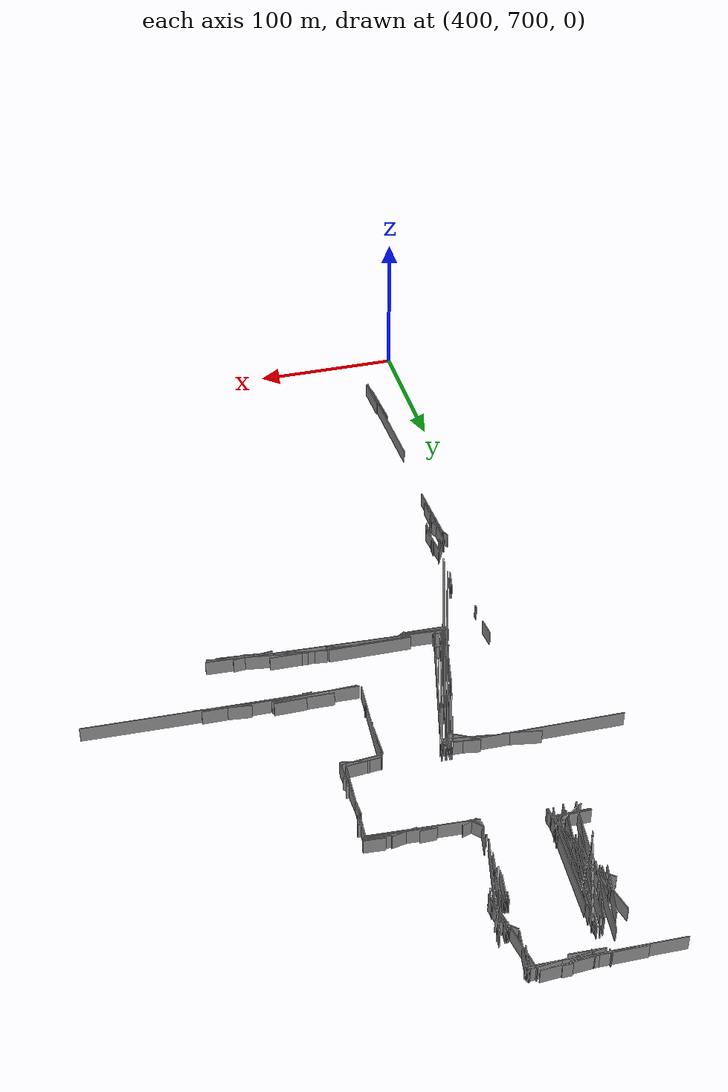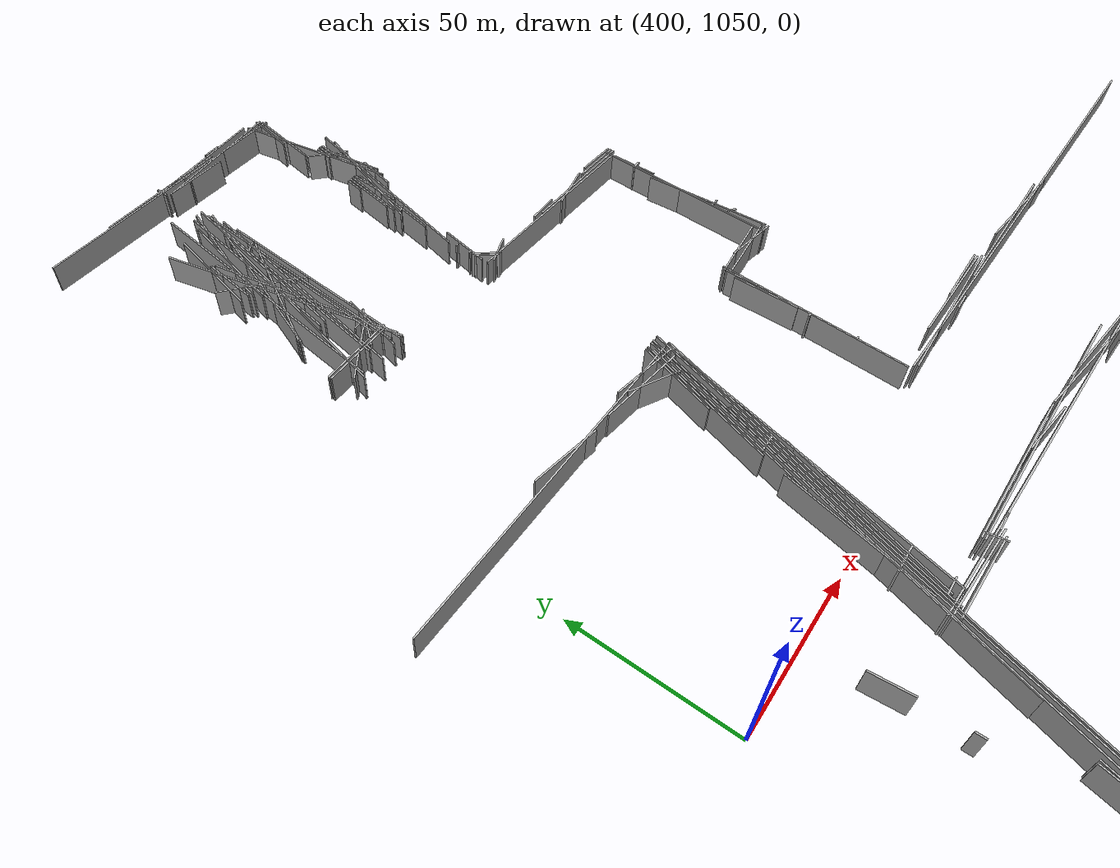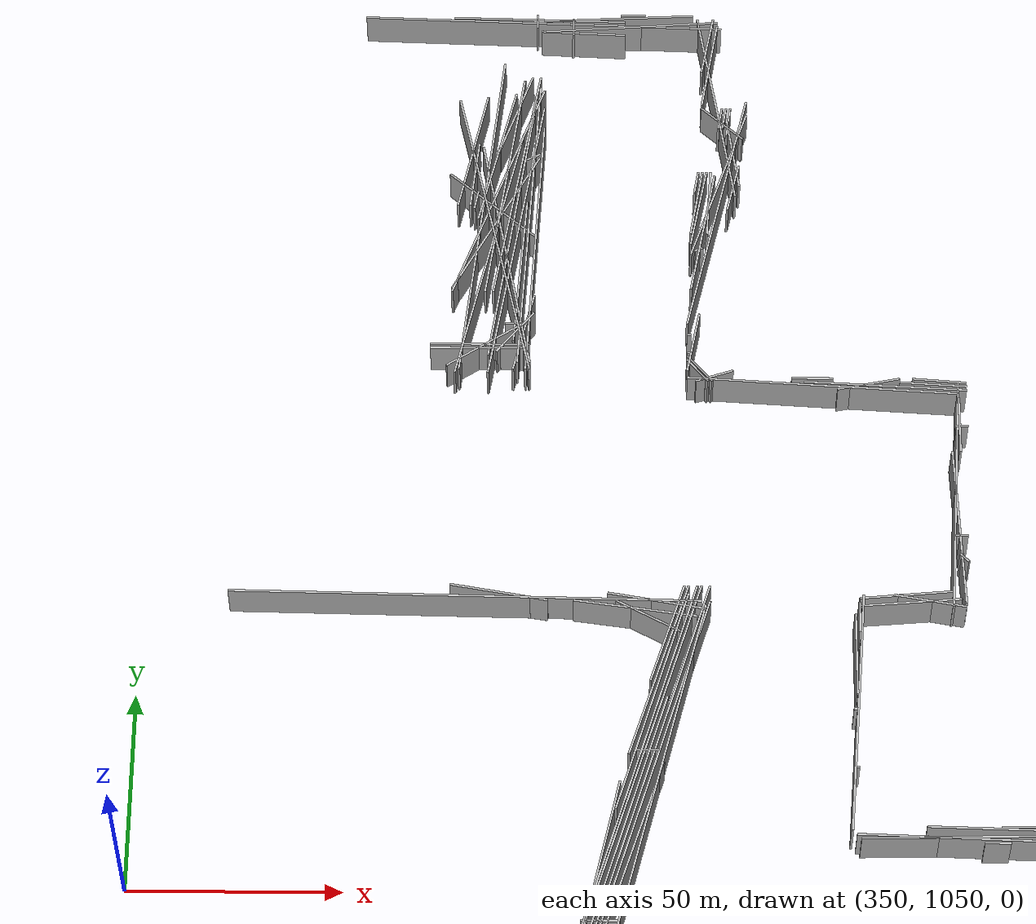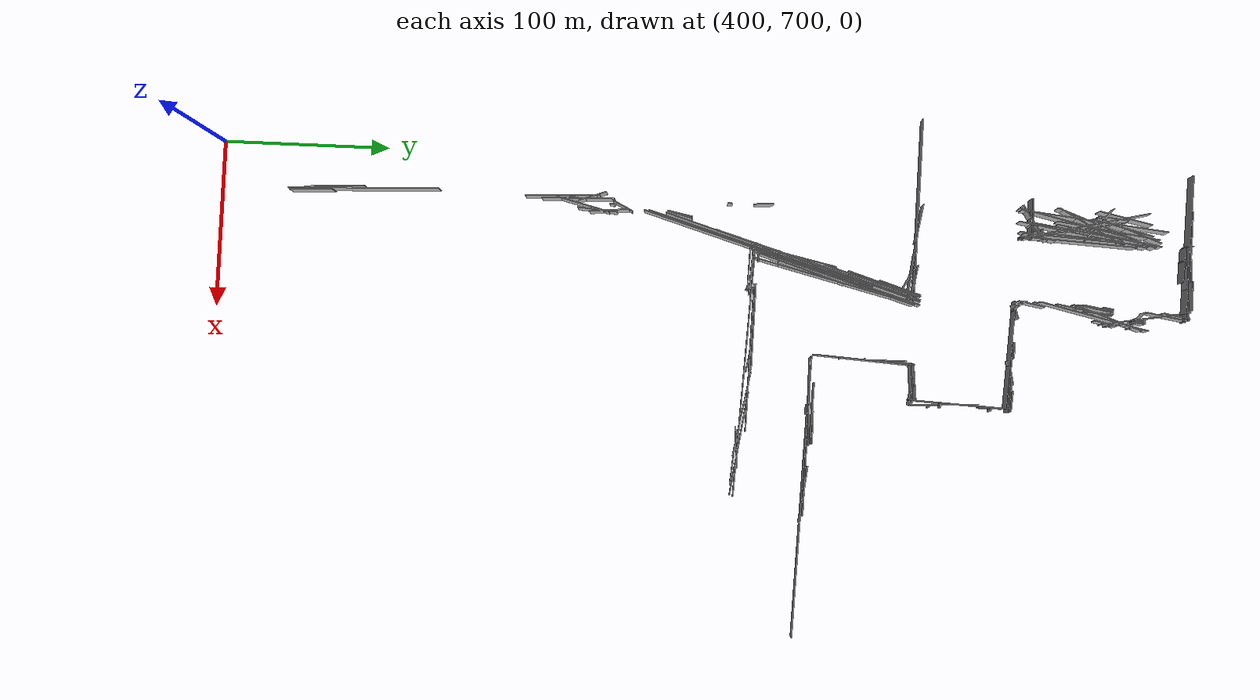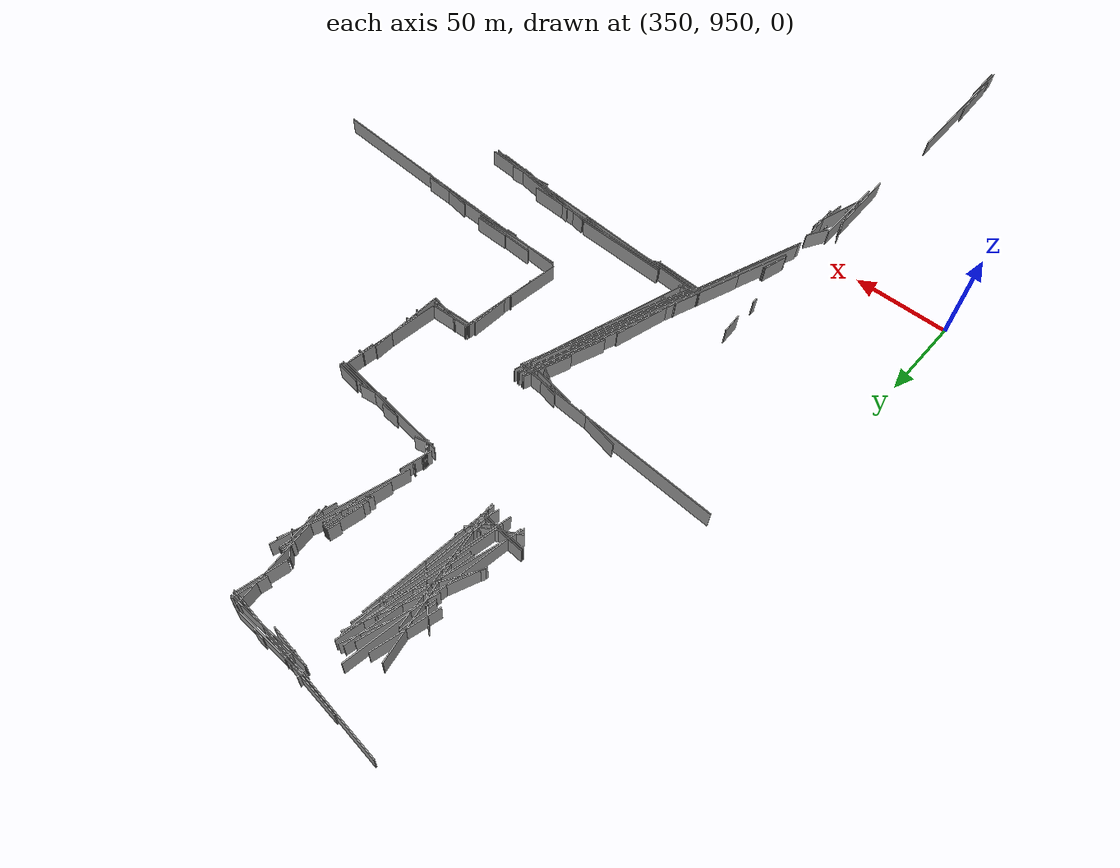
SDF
<sdf version="1.6">
 <model name="Worldsegments">
  <static>1</static>
  <link name="Wall_7">
   <pose>601.0 1058.0 5.0 0 0 -0.035699114</pose>
   <collision name="Wall_7_Collision"><geometry><box><size>168.1071 0.5 10.0</size></box></geometry></collision>
   <visual name="Wall_7_Visual"><geometry><box><size>168.1071 0.5 10.0</size></box></geometry></visual>
  </link>
  <link name="Wall_8">
   <pose>437.5 1221.5 5.0 0 0 1.4035424</pose>
   <collision name="Wall_8_Collision"><geometry><box><size>78.08969 0.5 10.0</size></box></geometry></collision>
   <visual name="Wall_8_Visual"><geometry><box><size>78.08969 0.5 10.0</size></box></geometry></visual>
  </link>
  <link name="Wall_11">
   <pose>487.0 1237.5 5.0 0 0 1.2417467</pose>
   <collision name="Wall_11_Collision"><geometry><box><size>43.32436 0.5 10.0</size></box></geometry></collision>
   <visual name="Wall_11_Visual"><geometry><box><size>43.32436 0.5 10.0</size></box></geometry></visual>
  </link>
  <link name="Wall_12">
   <pose>437.5 1237.5 5.0 0 0 1.3979357</pose>
   <collision name="Wall_12_Collision">
    <geometry><box><size>63.953106 0.5 10.0</size></box></geometry>
   </collision>
   <visual name="Wall_12_Visual"><geometry><box><size>63.953106 0.5 10.0</size></box></geometry></visual>
  </link>
  <link name="Wall_28">
   <pose>458.5 1041.0 5.0 0 0 1.2760662</pose>
   <collision name="Wall_28_Collision"><geometry><box><size>175.5705 0.5 10.0</size></box></geometry></collision>
   <visual name="Wall_28_Visual"><geometry><box><size>175.5705 0.5 10.0</size></box></geometry></visual>
  </link>
  <link name="Wall_44">
   <pose>490.5 1236.5 5.0 0 0 1.3439975</pose>
   <collision name="Wall_44_Collision">
    <geometry><box><size>13.341664 0.5 10.0</size></box></geometry>
   </collision>
   <visual name="Wall_44_Visual"><geometry><box><size>13.341664 0.5 10.0</size></box></geometry></visual>
  </link>
  <link name="Wall_50">
   <pose>458.0 1047.5 5.0 0 0 1.2704849</pose>
   <collision name="Wall_50_Collision">
    <geometry><box><size>162.26213 0.5 10.0</size></box></geometry>
   </collision>
   <visual name="Wall_50_Visual"><geometry><box><size>162.26213 0.5 10.0</size></box></geometry></visual>
  </link>
  <link name="Wall_53">
   <pose>551.5 1062.5 5.0 0 0 -0.027020449</pose>
   <collision name="Wall_53_Collision"><geometry><box><size>37.01351 0.5 10.0</size></box></geometry></collision>
   <visual name="Wall_53_Visual"><geometry><box><size>37.01351 0.5 10.0</size></box></geometry></visual>
  </link>
  <link name="Wall_60">
   <pose>429.0 1228.5 5.0 0 0 1.458906</pose>
   <collision name="Wall_60_Collision">
    <geometry><box><size>89.560036 0.5 10.0</size></box></geometry>
   </collision>
   <visual name="Wall_60_Visual"><geometry><box><size>89.560036 0.5 10.0</size></box></geometry></visual>
  </link>
  <link name="Wall_64">
   <pose>458.5 1039.0 5.0 0 0 0.0</pose>
   <collision name="Wall_64_Collision"><geometry><box><size>9.0 0.5 10.0</size></box></geometry></collision>
   <visual name="Wall_64_Visual"><geometry><box><size>9.0 0.5 10.0</size></box></geometry></visual>
  </link>
  <link name="Wall_65">
   <pose>469.0 1072.0 5.0 0 0 1.2737321</pose>
   <collision name="Wall_65_Collision">
    <geometry><box><size>102.48902 0.5 10.0</size></box></geometry>
   </collision>
   <visual name="Wall_65_Visual"><geometry><box><size>102.48902 0.5 10.0</size></box></geometry></visual>
  </link>
  <link name="Wall_69">
   <pose>434.5 1237.0 5.0 0 0 1.426642</pose>
   <collision name="Wall_69_Collision">
    <geometry><box><size>62.649822 0.5 10.0</size></box></geometry>
   </collision>
   <visual name="Wall_69_Visual"><geometry><box><size>62.649822 0.5 10.0</size></box></geometry></visual>
  </link>
  <link name="Wall_71">
   <pose>526.5 1021.0 5.0 0 0 -0.052240007</pose>
   <collision name="Wall_71_Collision">
    <geometry><box><size>153.20901 0.5 10.0</size></box></geometry>
   </collision>
   <visual name="Wall_71_Visual"><geometry><box><size>153.20901 0.5 10.0</size></box></geometry></visual>
  </link>
  <link name="Wall_74">
   <pose>426.5 787.5 5.0 0 0 -1.5378412</pose>
   <collision name="Wall_74_Collision"><geometry><box><size>91.04944 0.5 10.0</size></box></geometry></collision>
   <visual name="Wall_74_Visual"><geometry><box><size>91.04944 0.5 10.0</size></box></geometry></visual>
  </link>
  <link name="Wall_75">
   <pose>439.5 1194.5 5.0 0 0 1.3370532</pose>
   <collision name="Wall_75_Collision">
    <geometry><box><size>21.587032 0.5 10.0</size></box></geometry>
   </collision>
   <visual name="Wall_75_Visual"><geometry><box><size>21.587032 0.5 10.0</size></box></geometry></visual>
  </link>
  <link name="Wall_87">
   <pose>509.0 1182.0 5.0 0 0 0.0</pose>
   <collision name="Wall_87_Collision"><geometry><box><size>10.0 0.5 10.0</size></box></geometry></collision>
   <visual name="Wall_87_Visual"><geometry><box><size>10.0 0.5 10.0</size></box></geometry></visual>
  </link>
  <link name="Wall_105">
   <pose>432.5 1245.5 5.0 0 0 1.332187</pose>
   <collision name="Wall_105_Collision">
    <geometry><box><size>38.078865 0.5 10.0</size></box></geometry>
   </collision>
   <visual name="Wall_105_Visual"><geometry><box><size>38.078865 0.5 10.0</size></box></geometry></visual>
  </link>
  <link name="Wall_118">
   <pose>464.5 1052.5 5.0 0 0 1.2604089</pose>
   <collision name="Wall_118_Collision">
    <geometry><box><size>55.65968 0.5 10.0</size></box></geometry>
   </collision>
   <visual name="Wall_118_Visual"><geometry><box><size>55.65968 0.5 10.0</size></box></geometry></visual>
  </link>
  <link name="Wall_121">
   <pose>427.5 917.0 5.0 0 0 -1.5480729</pose>
   <collision name="Wall_121_Collision">
    <geometry><box><size>44.011364 0.5 10.0</size></box></geometry>
   </collision>
   <visual name="Wall_121_Visual"><geometry><box><size>44.011364 0.5 10.0</size></box></geometry></visual>
  </link>
  <link name="Wall_123">
   <pose>453.5 1028.0 5.0 0 0 1.2779909</pose>
   <collision name="Wall_123_Collision">
    <geometry><box><size>142.04576 0.5 10.0</size></box></geometry>
   </collision>
   <visual name="Wall_123_Visual"><geometry><box><size>142.04576 0.5 10.0</size></box></geometry></visual>
  </link>
  <link name="Wall_124">
   <pose>544.5 1169.0 5.0 0 0 0.0</pose>
   <collision name="Wall_124_Collision"><geometry><box><size>3.0 0.5 10.0</size></box></geometry></collision>
   <visual name="Wall_124_Visual"><geometry><box><size>3.0 0.5 10.0</size></box></geometry></visual>
  </link>
  <link name="Wall_152">
   <pose>443.5 1285.5 5.0 0 0 -0.03369511</pose>
   <collision name="Wall_152_Collision">
    <geometry><box><size>89.050545 0.5 10.0</size></box></geometry>
   </collision>
   <visual name="Wall_152_Visual"><geometry><box><size>89.050545 0.5 10.0</size></box></geometry></visual>
  </link>
  <link name="Wall_157">
   <pose>519.5 1024.0 5.0 0 0 -0.02246813</pose>
   <collision name="Wall_157_Collision">
    <geometry><box><size>89.02247 0.5 10.0</size></box></geometry>
   </collision>
   <visual name="Wall_157_Visual"><geometry><box><size>89.02247 0.5 10.0</size></box></geometry></visual>
  </link>
  <link name="Wall_160">
   <pose>489.5 1256.0 5.0 0 0 1.4464413</pose>
   <collision name="Wall_160_Collision">
    <geometry><box><size>8.062258 0.5 10.0</size></box></geometry>
   </collision>
   <visual name="Wall_160_Visual"><geometry><box><size>8.062258 0.5 10.0</size></box></geometry></visual>
  </link>
  <link name="Wall_163">
   <pose>511.5 1180.0 5.0 0 0 -0.061460957</pose>
   <collision name="Wall_163_Collision">
    <geometry><box><size>65.12296 0.5 10.0</size></box></geometry>
   </collision>
   <visual name="Wall_163_Visual"><geometry><box><size>65.12296 0.5 10.0</size></box></geometry></visual>
  </link>
  <link name="Wall_165">
   <pose>431.0 1191.5 5.0 0 0 0.57637525</pose>
   <collision name="Wall_165_Collision">
    <geometry><box><size>23.853722 0.5 10.0</size></box></geometry>
   </collision>
   <visual name="Wall_165_Visual"><geometry><box><size>23.853722 0.5 10.0</size></box></geometry></visual>
  </link>
  <link name="Wall_183">
   <pose>465.5 1023.0 5.0 0 0 -0.06442684</pose>
   <collision name="Wall_183_Collision">
    <geometry><box><size>31.06445 0.5 10.0</size></box></geometry>
   </collision>
   <visual name="Wall_183_Visual"><geometry><box><size>31.06445 0.5 10.0</size></box></geometry></visual>
  </link>
  <link name="Wall_184">
   <pose>426.0 770.0 5.0 0 0 -1.5152978</pose>
   <collision name="Wall_184_Collision">
    <geometry><box><size>36.05551 0.5 10.0</size></box></geometry>
   </collision>
   <visual name="Wall_184_Visual"><geometry><box><size>36.05551 0.5 10.0</size></box></geometry></visual>
  </link>
  <link name="Wall_187">
   <pose>517.5 1078.0 5.0 0 0 0.0</pose>
   <collision name="Wall_187_Collision"><geometry><box><size>1.0 0.5 10.0</size></box></geometry></collision>
   <visual name="Wall_187_Visual"><geometry><box><size>1.0 0.5 10.0</size></box></geometry></visual>
  </link>
  <link name="Wall_189">
   <pose>442.0 1286.0 5.0 0 0 1.5707964</pose>
   <collision name="Wall_189_Collision"><geometry><box><size>4.0 0.5 10.0</size></box></geometry></collision>
   <visual name="Wall_189_Visual"><geometry><box><size>4.0 0.5 10.0</size></box></geometry></visual>
  </link>
  <link name="Wall_192">
   <pose>481.5 1238.0 5.0 0 0 1.4056476</pose>
   <collision name="Wall_192_Collision">
    <geometry><box><size>6.0827627 0.5 10.0</size></box></geometry>
   </collision>
   <visual name="Wall_192_Visual"><geometry><box><size>6.0827627 0.5 10.0</size></box></geometry></visual>
  </link>
  <link name="Wall_194">
   <pose>469.0 1082.0 5.0 0 0 0.0</pose>
   <collision name="Wall_194_Collision"><geometry><box><size>6.0 0.5 10.0</size></box></geometry></collision>
   <visual name="Wall_194_Visual"><geometry><box><size>6.0 0.5 10.0</size></box></geometry></visual>
  </link>
  <link name="Wall_200">
   <pose>432.5 1226.0 5.0 0 0 1.0659349</pose>
   <collision name="Wall_200_Collision">
    <geometry><box><size>43.416588 0.5 10.0</size></box></geometry>
   </collision>
   <visual name="Wall_200_Visual"><geometry><box><size>43.416588 0.5 10.0</size></box></geometry></visual>
  </link>
  <link name="Wall_201">
   <pose>483.0 1223.5 5.0 0 0 1.3909428</pose>
   <collision name="Wall_201_Collision">
    <geometry><box><size>33.54102 0.5 10.0</size></box></geometry>
   </collision>
   <visual name="Wall_201_Visual"><geometry><box><size>33.54102 0.5 10.0</size></box></geometry></visual>
  </link>
  <link name="Wall_206">
   <pose>442.5 1286.5 5.0 0 0 -0.023251623</pose>
   <collision name="Wall_206_Collision">
    <geometry><box><size>43.011627 0.5 10.0</size></box></geometry>
   </collision>
   <visual name="Wall_206_Visual"><geometry><box><size>43.011627 0.5 10.0</size></box></geometry></visual>
  </link>
  <link name="Wall_208">
   <pose>440.5 1226.0 5.0 0 0 1.5083776</pose>
   <collision name="Wall_208_Collision"><geometry><box><size>80.1561 0.5 10.0</size></box></geometry></collision>
   <visual name="Wall_208_Visual"><geometry><box><size>80.1561 0.5 10.0</size></box></geometry></visual>
  </link>
  <link name="Wall_213">
   <pose>486.5 1229.5 5.0 0 0 1.3439975</pose>
   <collision name="Wall_213_Collision">
    <geometry><box><size>66.70832 0.5 10.0</size></box></geometry>
   </collision>
   <visual name="Wall_213_Visual"><geometry><box><size>66.70832 0.5 10.0</size></box></geometry></visual>
  </link>
  <link name="Wall_223">
   <pose>472.0 1103.0 5.0 0 0 1.2627436</pose>
   <collision name="Wall_223_Collision">
    <geometry><box><size>46.173584 0.5 10.0</size></box></geometry>
   </collision>
   <visual name="Wall_223_Visual"><geometry><box><size>46.173584 0.5 10.0</size></box></geometry></visual>
  </link>
  <link name="Wall_226">
   <pose>434.5 979.0 5.0 0 0 1.359703</pose>
   <collision name="Wall_226_Collision">
    <geometry><box><size>14.3178215 0.5 10.0</size></box></geometry>
   </collision>
   <visual name="Wall_226_Visual"><geometry><box><size>14.3178215 0.5 10.0</size></box></geometry></visual>
  </link>
  <link name="Wall_229">
   <pose>431.5 1231.0 5.0 0 0 -0.7086263</pose>
   <collision name="Wall_229_Collision">
    <geometry><box><size>27.658634 0.5 10.0</size></box></geometry>
   </collision>
   <visual name="Wall_229_Visual"><geometry><box><size>27.658634 0.5 10.0</size></box></geometry></visual>
  </link>
  <link name="Wall_232">
   <pose>517.5 1093.0 5.0 0 0 0.0</pose>
   <collision name="Wall_232_Collision"><geometry><box><size>1.0 0.5 10.0</size></box></geometry></collision>
   <visual name="Wall_232_Visual"><geometry><box><size>1.0 0.5 10.0</size></box></geometry></visual>
  </link>
  <link name="Wall_234">
   <pose>488.5 1257.0 5.0 0 0 1.4056476</pose>
   <collision name="Wall_234_Collision">
    <geometry><box><size>6.0827627 0.5 10.0</size></box></geometry>
   </collision>
   <visual name="Wall_234_Visual"><geometry><box><size>6.0827627 0.5 10.0</size></box></geometry></visual>
  </link>
  <link name="Wall_243">
   <pose>543.5 1139.0 5.0 0 0 0.0</pose>
   <collision name="Wall_243_Collision"><geometry><box><size>3.0 0.5 10.0</size></box></geometry></collision>
   <visual name="Wall_243_Visual"><geometry><box><size>3.0 0.5 10.0</size></box></geometry></visual>
  </link>
  <link name="Wall_244">
   <pose>438.5 1212.0 5.0 0 0 1.4959365</pose>
   <collision name="Wall_244_Collision">
    <geometry><box><size>40.112343 0.5 10.0</size></box></geometry>
   </collision>
   <visual name="Wall_244_Visual"><geometry><box><size>40.112343 0.5 10.0</size></box></geometry></visual>
  </link>
  <link name="Wall_247">
   <pose>518.0 1092.5 5.0 0 0 1.5053163</pose>
   <collision name="Wall_247_Collision">
    <geometry><box><size>61.13101 0.5 10.0</size></box></geometry>
   </collision>
   <visual name="Wall_247_Visual"><geometry><box><size>61.13101 0.5 10.0</size></box></geometry></visual>
  </link>
  <link name="Wall_251">
   <pose>428.5 756.0 5.0 0 0 -1.5323538</pose>
   <collision name="Wall_251_Collision">
    <geometry><box><size>26.019224 0.5 10.0</size></box></geometry>
   </collision>
   <visual name="Wall_251_Visual"><geometry><box><size>26.019224 0.5 10.0</size></box></geometry></visual>
  </link>
  <link name="Wall_257">
   <pose>430.0 937.5 5.0 0 0 -1.5707964</pose>
   <collision name="Wall_257_Collision"><geometry><box><size>3.0 0.5 10.0</size></box></geometry></collision>
   <visual name="Wall_257_Visual"><geometry><box><size>3.0 0.5 10.0</size></box></geometry></visual>
  </link>
  <link name="Wall_271">
   <pose>431.0 1217.5 5.0 0 0 1.3429393</pose>
   <collision name="Wall_271_Collision">
    <geometry><box><size>70.83079 0.5 10.0</size></box></geometry>
   </collision>
   <visual name="Wall_271_Visual"><geometry><box><size>70.83079 0.5 10.0</size></box></geometry></visual>
  </link>
  <link name="Wall_273">
   <pose>426.5 1122.0 5.0 0 0 -0.018016068</pose>
   <collision name="Wall_273_Collision">
    <geometry><box><size>111.01801 0.5 10.0</size></box></geometry>
   </collision>
   <visual name="Wall_273_Visual"><geometry><box><size>111.01801 0.5 10.0</size></box></geometry></visual>
  </link>
  <link name="Wall_274">
   <pose>479.5 1189.0 5.0 0 0 0.0</pose>
   <collision name="Wall_274_Collision"><geometry><box><size>1.0 0.5 10.0</size></box></geometry></collision>
   <visual name="Wall_274_Visual"><geometry><box><size>1.0 0.5 10.0</size></box></geometry></visual>
  </link>
  <link name="Wall_278">
   <pose>542.5 1150.5 5.0 0 0 1.5216556</pose>
   <collision name="Wall_278_Collision">
    <geometry><box><size>61.073727 0.5 10.0</size></box></geometry>
   </collision>
   <visual name="Wall_278_Visual"><geometry><box><size>61.073727 0.5 10.0</size></box></geometry></visual>
  </link>
  <link name="Wall_281">
   <pose>458.0 1051.5 5.0 0 0 1.3521274</pose>
   <collision name="Wall_281_Collision">
    <geometry><box><size>46.09772 0.5 10.0</size></box></geometry>
   </collision>
   <visual name="Wall_281_Visual"><geometry><box><size>46.09772 0.5 10.0</size></box></geometry></visual>
  </link>
  <link name="Wall_290">
   <pose>426.5 1029.0 5.0 0 0 -1.487655</pose>
   <collision name="Wall_290_Collision">
    <geometry><box><size>12.0415945 0.5 10.0</size></box></geometry>
   </collision>
   <visual name="Wall_290_Visual"><geometry><box><size>12.0415945 0.5 10.0</size></box></geometry></visual>
  </link>
  <link name="Wall_298">
   <pose>481.5 1184.0 5.0 0 0 -0.87605804</pose>
   <collision name="Wall_298_Collision"><geometry><box><size>7.81025 0.5 10.0</size></box></geometry></collision>
   <visual name="Wall_298_Visual"><geometry><box><size>7.81025 0.5 10.0</size></box></geometry></visual>
  </link>
  <link name="Wall_300">
   <pose>549.0 1059.0 5.0 0 0 0.0</pose>
   <collision name="Wall_300_Collision"><geometry><box><size>6.0 0.5 10.0</size></box></geometry></collision>
   <visual name="Wall_300_Visual"><geometry><box><size>6.0 0.5 10.0</size></box></geometry></visual>
  </link>
  <link name="Wall_303">
   <pose>482.0 1184.5 5.0 0 0 -0.86217004</pose>
   <collision name="Wall_303_Collision">
    <geometry><box><size>9.219544 0.5 10.0</size></box></geometry>
   </collision>
   <visual name="Wall_303_Visual"><geometry><box><size>9.219544 0.5 10.0</size></box></geometry></visual>
  </link>
  <link name="Wall_306">
   <pose>426.5 1247.0 5.0 0 0 1.3554386</pose>
   <collision name="Wall_306_Collision">
    <geometry><box><size>32.75668 0.5 10.0</size></box></geometry>
   </collision>
   <visual name="Wall_306_Visual"><geometry><box><size>32.75668 0.5 10.0</size></box></geometry></visual>
  </link>
  <link name="Wall_309">
   <pose>487.5 1257.0 5.0 0 0 1.4056476</pose>
   <collision name="Wall_309_Collision">
    <geometry><box><size>6.0827627 0.5 10.0</size></box></geometry>
   </collision>
   <visual name="Wall_309_Visual"><geometry><box><size>6.0827627 0.5 10.0</size></box></geometry></visual>
  </link>
  <link name="Wall_311">
   <pose>465.0 1021.5 5.0 0 0 -0.035699114</pose>
   <collision name="Wall_311_Collision">
    <geometry><box><size>28.01785 0.5 10.0</size></box></geometry>
   </collision>
   <visual name="Wall_311_Visual"><geometry><box><size>28.01785 0.5 10.0</size></box></geometry></visual>
  </link>
  <link name="Wall_313">
   <pose>535.5 1121.5 5.0 0 0 -0.1746722</pose>
   <collision name="Wall_313_Collision">
    <geometry><box><size>17.262676 0.5 10.0</size></box></geometry>
   </collision>
   <visual name="Wall_313_Visual"><geometry><box><size>17.262676 0.5 10.0</size></box></geometry></visual>
  </link>
  <link name="Wall_319">
   <pose>522.5 1180.5 5.0 0 0 0.19739556</pose>
   <collision name="Wall_319_Collision">
    <geometry><box><size>15.297058 0.5 10.0</size></box></geometry>
   </collision>
   <visual name="Wall_319_Visual"><geometry><box><size>15.297058 0.5 10.0</size></box></geometry></visual>
  </link>
  <link name="Wall_322">
   <pose>571.0 1019.5 5.0 0 0 -0.14415438</pose>
   <collision name="Wall_322_Collision">
    <geometry><box><size>62.649822 0.5 10.0</size></box></geometry>
   </collision>
   <visual name="Wall_322_Visual"><geometry><box><size>62.649822 0.5 10.0</size></box></geometry></visual>
  </link>
  <link name="Wall_326">
   <pose>451.0 1284.5 5.0 0 0 1.5707964</pose>
   <collision name="Wall_326_Collision"><geometry><box><size>5.0 0.5 10.0</size></box></geometry></collision>
   <visual name="Wall_326_Visual"><geometry><box><size>5.0 0.5 10.0</size></box></geometry></visual>
  </link>
  <link name="Wall_328">
   <pose>482.0 1230.5 5.0 0 0 1.3825748</pose>
   <collision name="Wall_328_Collision">
    <geometry><box><size>21.377558 0.5 10.0</size></box></geometry>
   </collision>
   <visual name="Wall_328_Visual"><geometry><box><size>21.377558 0.5 10.0</size></box></geometry></visual>
  </link>
  <link name="Wall_338">
   <pose>553.5 1020.5 5.0 0 0 -0.1746722</pose>
   <collision name="Wall_338_Collision">
    <geometry><box><size>51.78803 0.5 10.0</size></box></geometry>
   </collision>
   <visual name="Wall_338_Visual"><geometry><box><size>51.78803 0.5 10.0</size></box></geometry></visual>
  </link>
  <link name="Wall_343">
   <pose>434.5 1123.0 5.0 0 0 -0.17219082</pose>
   <collision name="Wall_343_Collision">
    <geometry><box><size>23.345236 0.5 10.0</size></box></geometry>
   </collision>
   <visual name="Wall_343_Visual"><geometry><box><size>23.345236 0.5 10.0</size></box></geometry></visual>
  </link>
  <link name="Wall_351">
   <pose>544.5 1060.5 5.0 0 0 0.018865686</pose>
   <collision name="Wall_351_Collision">
    <geometry><box><size>53.009434 0.5 10.0</size></box></geometry>
   </collision>
   <visual name="Wall_351_Visual"><geometry><box><size>53.009434 0.5 10.0</size></box></geometry></visual>
  </link>
  <link name="Wall_360">
   <pose>526.5 1180.0 5.0 0 0 -0.051237166</pose>
   <collision name="Wall_360_Collision">
    <geometry><box><size>39.051247 0.5 10.0</size></box></geometry>
   </collision>
   <visual name="Wall_360_Visual"><geometry><box><size>39.051247 0.5 10.0</size></box></geometry></visual>
  </link>
  <link name="Wall_364">
   <pose>484.5 1279.0 5.0 0 0 1.3854483</pose>
   <collision name="Wall_364_Collision">
    <geometry><box><size>16.27882 0.5 10.0</size></box></geometry>
   </collision>
   <visual name="Wall_364_Visual"><geometry><box><size>16.27882 0.5 10.0</size></box></geometry></visual>
  </link>
  <link name="Wall_366">
   <pose>469.5 1117.0 5.0 0 0 -0.48995733</pose>
   <collision name="Wall_366_Collision"><geometry><box><size>17.0 0.5 10.0</size></box></geometry></collision>
   <visual name="Wall_366_Visual"><geometry><box><size>17.0 0.5 10.0</size></box></geometry></visual>
  </link>
  <link name="Wall_367">
   <pose>435.0 978.5 5.0 0 0 1.3101939</pose>
   <collision name="Wall_367_Collision">
    <geometry><box><size>15.524175 0.5 10.0</size></box></geometry>
   </collision>
   <visual name="Wall_367_Visual"><geometry><box><size>15.524175 0.5 10.0</size></box></geometry></visual>
  </link>
  <link name="Wall_369">
   <pose>482.0 1218.5 5.0 0 0 0.4636476</pose>
   <collision name="Wall_369_Collision">
    <geometry><box><size>2.236068 0.5 10.0</size></box></geometry>
   </collision>
   <visual name="Wall_369_Visual"><geometry><box><size>2.236068 0.5 10.0</size></box></geometry></visual>
  </link>
  <link name="Wall_375">
   <pose>477.5 1023.0 5.0 0 0 -1.4056476</pose>
   <collision name="Wall_375_Collision">
    <geometry><box><size>6.0827627 0.5 10.0</size></box></geometry>
   </collision>
   <visual name="Wall_375_Visual"><geometry><box><size>6.0827627 0.5 10.0</size></box></geometry></visual>
  </link>
  <link name="Wall_378">
   <pose>518.5 1023.5 5.0 0 0 -0.15660188</pose>
   <collision name="Wall_378_Collision">
    <geometry><box><size>19.235384 0.5 10.0</size></box></geometry>
   </collision>
   <visual name="Wall_378_Visual"><geometry><box><size>19.235384 0.5 10.0</size></box></geometry></visual>
  </link>
  <link name="Wall_380">
   <pose>531.0 1121.0 5.0 0 0 0.08314123</pose>
   <collision name="Wall_380_Collision">
    <geometry><box><size>24.083189 0.5 10.0</size></box></geometry>
   </collision>
   <visual name="Wall_380_Visual"><geometry><box><size>24.083189 0.5 10.0</size></box></geometry></visual>
  </link>
  <link name="Wall_386">
   <pose>432.0 1223.0 5.0 0 0 -1.3439975</pose>
   <collision name="Wall_386_Collision">
    <geometry><box><size>80.04999 0.5 10.0</size></box></geometry>
   </collision>
   <visual name="Wall_386_Visual"><geometry><box><size>80.04999 0.5 10.0</size></box></geometry></visual>
  </link>
  <link name="Wall_392">
   <pose>501.0 1025.5 5.0 0 0 -0.019228399</pose>
   <collision name="Wall_392_Collision">
    <geometry><box><size>52.009613 0.5 10.0</size></box></geometry>
   </collision>
   <visual name="Wall_392_Visual"><geometry><box><size>52.009613 0.5 10.0</size></box></geometry></visual>
  </link>
  <link name="Wall_395">
   <pose>427.5 1232.5 5.0 0 0 1.3734008</pose>
   <collision name="Wall_395_Collision">
    <geometry><box><size>5.0990195 0.5 10.0</size></box></geometry>
   </collision>
   <visual name="Wall_395_Visual"><geometry><box><size>5.0990195 0.5 10.0</size></box></geometry></visual>
  </link>
  <link name="Wall_399">
   <pose>462.0 1062.5 5.0 0 0 1.2756739</pose>
   <collision name="Wall_399_Collision">
    <geometry><box><size>130.64838 0.5 10.0</size></box></geometry>
   </collision>
   <visual name="Wall_399_Visual"><geometry><box><size>130.64838 0.5 10.0</size></box></geometry></visual>
  </link>
  <link name="Wall_403">
   <pose>461.0 1287.0 5.0 0 0 0.049958397</pose>
   <collision name="Wall_403_Collision">
    <geometry><box><size>40.04997 0.5 10.0</size></box></geometry>
   </collision>
   <visual name="Wall_403_Visual"><geometry><box><size>40.04997 0.5 10.0</size></box></geometry></visual>
  </link>
  <link name="Wall_404">
   <pose>481.5 1232.0 5.0 0 0 1.4056476</pose>
   <collision name="Wall_404_Collision">
    <geometry><box><size>18.248287 0.5 10.0</size></box></geometry>
   </collision>
   <visual name="Wall_404_Visual"><geometry><box><size>18.248287 0.5 10.0</size></box></geometry></visual>
  </link>
  <link name="Wall_407">
   <pose>465.5 1284.5 5.0 0 0 0.06965458</pose>
   <collision name="Wall_407_Collision">
    <geometry><box><size>43.104523 0.5 10.0</size></box></geometry>
   </collision>
   <visual name="Wall_407_Visual"><geometry><box><size>43.104523 0.5 10.0</size></box></geometry></visual>
  </link>
  <link name="Wall_412">
   <pose>434.0 936.0 5.0 0 0 -1.487655</pose>
   <collision name="Wall_412_Collision">
    <geometry><box><size>24.083189 0.5 10.0</size></box></geometry>
   </collision>
   <visual name="Wall_412_Visual"><geometry><box><size>24.083189 0.5 10.0</size></box></geometry></visual>
  </link>
  <link name="Wall_414">
   <pose>453.5 1282.5 5.0 0 0 -0.047583103</pose>
   <collision name="Wall_414_Collision">
    <geometry><box><size>21.023796 0.5 10.0</size></box></geometry>
   </collision>
   <visual name="Wall_414_Visual"><geometry><box><size>21.023796 0.5 10.0</size></box></geometry></visual>
  </link>
  <link name="Wall_416">
   <pose>530.0 1123.0 5.0 0 0 0.09065989</pose>
   <collision name="Wall_416_Collision">
    <geometry><box><size>22.090721 0.5 10.0</size></box></geometry>
   </collision>
   <visual name="Wall_416_Visual"><geometry><box><size>22.090721 0.5 10.0</size></box></geometry></visual>
  </link>
  <link name="Wall_419">
   <pose>431.0 920.0 5.0 0 0 1.3258177</pose>
   <collision name="Wall_419_Collision">
    <geometry><box><size>32.984844 0.5 10.0</size></box></geometry>
   </collision>
   <visual name="Wall_419_Visual"><geometry><box><size>32.984844 0.5 10.0</size></box></geometry></visual>
  </link>
  <link name="Wall_420">
   <pose>484.5 1232.0 5.0 0 0 1.5152978</pose>
   <collision name="Wall_420_Collision">
    <geometry><box><size>18.027756 0.5 10.0</size></box></geometry>
   </collision>
   <visual name="Wall_420_Visual"><geometry><box><size>18.027756 0.5 10.0</size></box></geometry></visual>
  </link>
  <link name="Wall_426">
   <pose>458.0 1027.0 5.0 0 0 0.0</pose>
   <collision name="Wall_426_Collision"><geometry><box><size>6.0 0.5 10.0</size></box></geometry></collision>
   <visual name="Wall_426_Visual"><geometry><box><size>6.0 0.5 10.0</size></box></geometry></visual>
  </link>
  <link name="Wall_428">
   <pose>431.0 944.0 5.0 0 0 1.1071488</pose>
   <collision name="Wall_428_Collision">
    <geometry><box><size>13.416408 0.5 10.0</size></box></geometry>
   </collision>
   <visual name="Wall_428_Visual"><geometry><box><size>13.416408 0.5 10.0</size></box></geometry></visual>
  </link>
  <link name="Wall_429">
   <pose>427.0 914.5 5.0 0 0 1.5707964</pose>
   <collision name="Wall_429_Collision"><geometry><box><size>5.0 0.5 10.0</size></box></geometry></collision>
   <visual name="Wall_429_Visual"><geometry><box><size>5.0 0.5 10.0</size></box></geometry></visual>
  </link>
  <link name="Wall_452">
   <pose>427.0 1240.0 5.0 0 0 1.4601392</pose>
   <collision name="Wall_452_Collision">
    <geometry><box><size>18.110771 0.5 10.0</size></box></geometry>
   </collision>
   <visual name="Wall_452_Visual"><geometry><box><size>18.110771 0.5 10.0</size></box></geometry></visual>
  </link>
  <link name="Wall_455">
   <pose>486.5 1260.5 5.0 0 0 -1.4025896</pose>
   <collision name="Wall_455_Collision">
    <geometry><box><size>53.75872 0.5 10.0</size></box></geometry>
   </collision>
   <visual name="Wall_455_Visual"><geometry><box><size>53.75872 0.5 10.0</size></box></geometry></visual>
  </link>
  <link name="Wall_460">
   <pose>544.0 1169.5 5.0 0 0 1.5707964</pose>
   <collision name="Wall_460_Collision"><geometry><box><size>15.0 0.5 10.0</size></box></geometry></collision>
   <visual name="Wall_460_Visual"><geometry><box><size>15.0 0.5 10.0</size></box></geometry></visual>
  </link>
  <link name="Wall_469">
   <pose>479.5 1194.0 5.0 0 0 0.0</pose>
   <collision name="Wall_469_Collision"><geometry><box><size>1.0 0.5 10.0</size></box></geometry></collision>
   <visual name="Wall_469_Visual"><geometry><box><size>1.0 0.5 10.0</size></box></geometry></visual>
  </link>
  <link name="Wall_471">
   <pose>600.0 1059.0 5.0 0 0 -0.11710875</pose>
   <collision name="Wall_471_Collision">
    <geometry><box><size>34.234486 0.5 10.0</size></box></geometry>
   </collision>
   <visual name="Wall_471_Visual"><geometry><box><size>34.234486 0.5 10.0</size></box></geometry></visual>
  </link>
  <link name="Wall_474">
   <pose>429.0 1191.0 5.0 0 0 0.0</pose>
   <collision name="Wall_474_Collision"><geometry><box><size>24.0 0.5 10.0</size></box></geometry></collision>
   <visual name="Wall_474_Visual"><geometry><box><size>24.0 0.5 10.0</size></box></geometry></visual>
  </link>
  <link name="Wall_476">
   <pose>438.0 1197.0 5.0 0 0 0.0</pose>
   <collision name="Wall_476_Collision"><geometry><box><size>6.0 0.5 10.0</size></box></geometry></collision>
   <visual name="Wall_476_Visual"><geometry><box><size>6.0 0.5 10.0</size></box></geometry></visual>
  </link>
  <link name="Wall_488">
   <pose>539.5 1181.5 5.0 0 0 -0.07677189</pose>
   <collision name="Wall_488_Collision">
    <geometry><box><size>13.038404 0.5 10.0</size></box></geometry>
   </collision>
   <visual name="Wall_488_Visual"><geometry><box><size>13.038404 0.5 10.0</size></box></geometry></visual>
  </link>
  <link name="Wall_489">
   <pose>573.5 1018.0 5.0 0 0 0.07982998</pose>
   <collision name="Wall_489_Collision">
    <geometry><box><size>25.079872 0.5 10.0</size></box></geometry>
   </collision>
   <visual name="Wall_489_Visual"><geometry><box><size>25.079872 0.5 10.0</size></box></geometry></visual>
  </link>
  <link name="Wall_493">
   <pose>485.5 1182.5 5.0 0 0 0.32175055</pose>
   <collision name="Wall_493_Collision">
    <geometry><box><size>9.486833 0.5 10.0</size></box></geometry>
   </collision>
   <visual name="Wall_493_Visual"><geometry><box><size>9.486833 0.5 10.0</size></box></geometry></visual>
  </link>
  <link name="Wall_495">
   <pose>435.0 1217.0 5.0 0 0 -1.3796118</pose>
   <collision name="Wall_495_Collision">
    <geometry><box><size>63.15061 0.5 10.0</size></box></geometry>
   </collision>
   <visual name="Wall_495_Visual"><geometry><box><size>63.15061 0.5 10.0</size></box></geometry></visual>
  </link>
  <link name="Wall_506">
   <pose>471.0 1072.0 5.0 0 0 1.3258177</pose>
   <collision name="Wall_506_Collision">
    <geometry><box><size>98.95454 0.5 10.0</size></box></geometry>
   </collision>
   <visual name="Wall_506_Visual"><geometry><box><size>98.95454 0.5 10.0</size></box></geometry></visual>
  </link>
  <link name="Wall_520">
   <pose>587.0 1059.5 5.0 0 0 -0.019228399</pose>
   <collision name="Wall_520_Collision">
    <geometry><box><size>52.009613 0.5 10.0</size></box></geometry>
   </collision>
   <visual name="Wall_520_Visual"><geometry><box><size>52.009613 0.5 10.0</size></box></geometry></visual>
  </link>
  <link name="Wall_524">
   <pose>433.0 1235.5 5.0 0 0 1.2138844</pose>
   <collision name="Wall_524_Collision">
    <geometry><box><size>62.968246 0.5 10.0</size></box></geometry>
   </collision>
   <visual name="Wall_524_Visual"><geometry><box><size>62.968246 0.5 10.0</size></box></geometry></visual>
  </link>
  <link name="Wall_534">
   <pose>428.5 1190.0 5.0 0 0 0.0</pose>
   <collision name="Wall_534_Collision"><geometry><box><size>23.0 0.5 10.0</size></box></geometry></collision>
   <visual name="Wall_534_Visual"><geometry><box><size>23.0 0.5 10.0</size></box></geometry></visual>
  </link>
  <link name="Wall_539">
   <pose>466.5 1119.0 5.0 0 0 -0.13706617</pose>
   <collision name="Wall_539_Collision">
    <geometry><box><size>29.274563 0.5 10.0</size></box></geometry>
   </collision>
   <visual name="Wall_539_Visual"><geometry><box><size>29.274563 0.5 10.0</size></box></geometry></visual>
  </link>
  <link name="Wall_540">
   <pose>544.0 1133.0 5.0 0 0 -0.7853982</pose>
   <collision name="Wall_540_Collision">
    <geometry><box><size>2.828427 0.5 10.0</size></box></geometry>
   </collision>
   <visual name="Wall_540_Visual"><geometry><box><size>2.828427 0.5 10.0</size></box></geometry></visual>
  </link>
  <link name="Wall_544">
   <pose>437.0 1258.0 5.0 0 0 1.2220253</pose>
   <collision name="Wall_544_Collision">
    <geometry><box><size>23.409399 0.5 10.0</size></box></geometry>
   </collision>
   <visual name="Wall_544_Visual"><geometry><box><size>23.409399 0.5 10.0</size></box></geometry></visual>
  </link>
  <link name="Wall_547">
   <pose>480.5 1192.0 5.0 0 0 1.3854483</pose>
   <collision name="Wall_547_Collision">
    <geometry><box><size>16.27882 0.5 10.0</size></box></geometry>
   </collision>
   <visual name="Wall_547_Visual"><geometry><box><size>16.27882 0.5 10.0</size></box></geometry></visual>
  </link>
  <link name="Wall_549">
   <pose>426.0 907.5 5.0 0 0 -1.5263811</pose>
   <collision name="Wall_549_Collision">
    <geometry><box><size>45.044422 0.5 10.0</size></box></geometry>
   </collision>
   <visual name="Wall_549_Visual"><geometry><box><size>45.044422 0.5 10.0</size></box></geometry></visual>
  </link>
  <link name="Wall_554">
   <pose>543.0 1141.5 5.0 0 0 -1.5220544</pose>
   <collision name="Wall_554_Collision">
    <geometry><box><size>41.04875 0.5 10.0</size></box></geometry>
   </collision>
   <visual name="Wall_554_Visual"><geometry><box><size>41.04875 0.5 10.0</size></box></geometry></visual>
  </link>
  <link name="Wall_560">
   <pose>441.0 1245.0 5.0 0 0 0.4636476</pose>
   <collision name="Wall_560_Collision">
    <geometry><box><size>4.472136 0.5 10.0</size></box></geometry>
   </collision>
   <visual name="Wall_560_Visual"><geometry><box><size>4.472136 0.5 10.0</size></box></geometry></visual>
  </link>
  <link name="Wall_565">
   <pose>434.0 929.0 5.0 0 0 1.487655</pose>
   <collision name="Wall_565_Collision">
    <geometry><box><size>24.083189 0.5 10.0</size></box></geometry>
   </collision>
   <visual name="Wall_565_Visual"><geometry><box><size>24.083189 0.5 10.0</size></box></geometry></visual>
  </link>
  <link name="Wall_576">
   <pose>474.0 1112.5 5.0 0 0 1.2610934</pose>
   <collision name="Wall_576_Collision">
    <geometry><box><size>26.24881 0.5 10.0</size></box></geometry>
   </collision>
   <visual name="Wall_576_Visual"><geometry><box><size>26.24881 0.5 10.0</size></box></geometry></visual>
  </link>
  <link name="Wall_584">
   <pose>490.5 1247.0 5.0 0 0 -1.4219064</pose>
   <collision name="Wall_584_Collision">
    <geometry><box><size>20.22375 0.5 10.0</size></box></geometry>
   </collision>
   <visual name="Wall_584_Visual"><geometry><box><size>20.22375 0.5 10.0</size></box></geometry></visual>
  </link>
  <link name="Wall_588">
   <pose>436.5 1225.0 5.0 0 0 1.4232283</pose>
   <collision name="Wall_588_Collision"><geometry><box><size>74.8131 0.5 10.0</size></box></geometry></collision>
   <visual name="Wall_588_Visual"><geometry><box><size>74.8131 0.5 10.0</size></box></geometry></visual>
  </link>
  <link name="Wall_602">
   <pose>427.0 1008.5 5.0 0 0 1.5707964</pose>
   <collision name="Wall_602_Collision"><geometry><box><size>3.0 0.5 10.0</size></box></geometry></collision>
   <visual name="Wall_602_Visual"><geometry><box><size>3.0 0.5 10.0</size></box></geometry></visual>
  </link>
  <link name="Wall_603">
   <pose>470.5 1095.0 5.0 0 0 1.2760662</pose>
   <collision name="Wall_603_Collision"><geometry><box><size>58.5235 0.5 10.0</size></box></geometry></collision>
   <visual name="Wall_603_Visual"><geometry><box><size>58.5235 0.5 10.0</size></box></geometry></visual>
  </link>
  <link name="Wall_613">
   <pose>466.0 1288.0 5.0 0 0 0.0</pose>
   <collision name="Wall_613_Collision"><geometry><box><size>6.0 0.5 10.0</size></box></geometry></collision>
   <visual name="Wall_613_Visual"><geometry><box><size>6.0 0.5 10.0</size></box></geometry></visual>
  </link>
  <link name="Wall_623">
   <pose>488.0 1255.5 5.0 0 0 -0.7328151</pose>
   <collision name="Wall_623_Collision">
    <geometry><box><size>13.453624 0.5 10.0</size></box></geometry>
   </collision>
   <visual name="Wall_623_Visual"><geometry><box><size>13.453624 0.5 10.0</size></box></geometry></visual>
  </link>
  <link name="Wall_625">
   <pose>538.0 1180.5 5.0 0 0 -0.06241881</pose>
   <collision name="Wall_625_Collision">
    <geometry><box><size>16.03122 0.5 10.0</size></box></geometry>
   </collision>
   <visual name="Wall_625_Visual"><geometry><box><size>16.03122 0.5 10.0</size></box></geometry></visual>
  </link>
  <link name="Wall_626">
   <pose>426.0 925.5 5.0 0 0 -1.2315037</pose>
   <collision name="Wall_626_Collision">
    <geometry><box><size>18.027756 0.5 10.0</size></box></geometry>
   </collision>
   <visual name="Wall_626_Visual"><geometry><box><size>18.027756 0.5 10.0</size></box></geometry></visual>
  </link>
  <link name="Wall_632">
   <pose>442.0 1219.0 5.0 0 0 1.5137155</pose>
   <collision name="Wall_632_Collision">
    <geometry><box><size>70.11419 0.5 10.0</size></box></geometry>
   </collision>
   <visual name="Wall_632_Visual"><geometry><box><size>70.11419 0.5 10.0</size></box></geometry></visual>
  </link>
  <link name="Wall_634">
   <pose>471.5 1121.0 5.0 0 0 -0.17219082</pose>
   <collision name="Wall_634_Collision">
    <geometry><box><size>23.345236 0.5 10.0</size></box></geometry>
   </collision>
   <visual name="Wall_634_Visual"><geometry><box><size>23.345236 0.5 10.0</size></box></geometry></visual>
  </link>
  <link name="Wall_635">
   <pose>585.0 1016.0 5.0 0 0 -0.09065989</pose>
   <collision name="Wall_635_Collision">
    <geometry><box><size>22.090721 0.5 10.0</size></box></geometry>
   </collision>
   <visual name="Wall_635_Visual"><geometry><box><size>22.090721 0.5 10.0</size></box></geometry></visual>
  </link>
  <link name="Wall_644">
   <pose>519.0 1116.0 5.0 0 0 1.5707964</pose>
   <collision name="Wall_644_Collision"><geometry><box><size>10.0 0.5 10.0</size></box></geometry></collision>
   <visual name="Wall_644_Visual"><geometry><box><size>10.0 0.5 10.0</size></box></geometry></visual>
  </link>
  <link name="Wall_645">
   <pose>483.0 1023.0 5.0 0 0 0.0</pose>
   <collision name="Wall_645_Collision"><geometry><box><size>6.0 0.5 10.0</size></box></geometry></collision>
   <visual name="Wall_645_Visual"><geometry><box><size>6.0 0.5 10.0</size></box></geometry></visual>
  </link>
  <link name="Wall_648">
   <pose>518.0 1107.5 5.0 0 0 -1.5707964</pose>
   <collision name="Wall_648_Collision"><geometry><box><size>21.0 0.5 10.0</size></box></geometry></collision>
   <visual name="Wall_648_Visual"><geometry><box><size>21.0 0.5 10.0</size></box></geometry></visual>
  </link>
  <link name="Wall_655">
   <pose>485.0 1273.0 5.0 0 0 1.4056476</pose>
   <collision name="Wall_655_Collision">
    <geometry><box><size>24.33105 0.5 10.0</size></box></geometry>
   </collision>
   <visual name="Wall_655_Visual"><geometry><box><size>24.33105 0.5 10.0</size></box></geometry></visual>
  </link>
  <link name="Wall_656">
   <pose>560.0 1063.0 5.0 0 0 0.0</pose>
   <collision name="Wall_656_Collision"><geometry><box><size>20.0 0.5 10.0</size></box></geometry></collision>
   <visual name="Wall_656_Visual"><geometry><box><size>20.0 0.5 10.0</size></box></geometry></visual>
  </link>
  <link name="Wall_657">
   <pose>437.5 1194.5 5.0 0 0 0.8850668</pose>
   <collision name="Wall_657_Collision">
    <geometry><box><size>14.21267 0.5 10.0</size></box></geometry>
   </collision>
   <visual name="Wall_657_Visual"><geometry><box><size>14.21267 0.5 10.0</size></box></geometry></visual>
  </link>
 </model>
</sdf>
